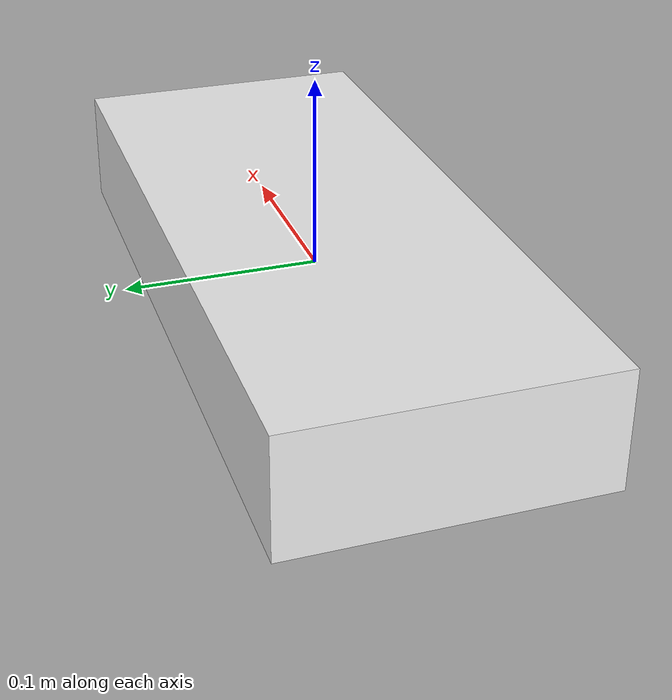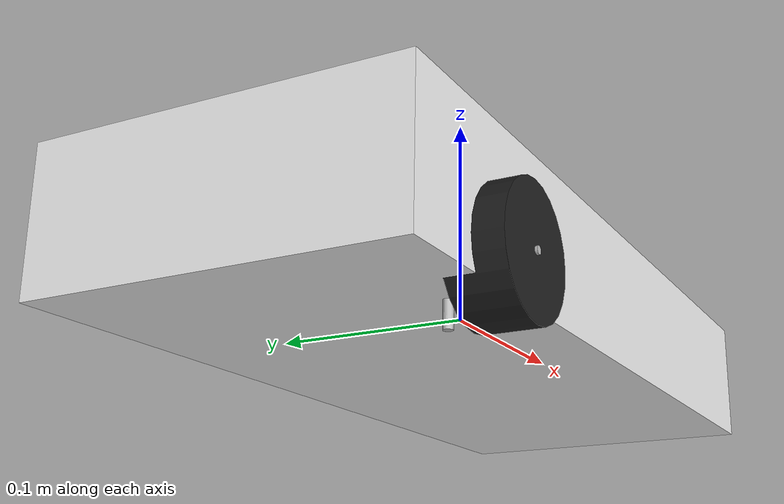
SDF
<sdf version='1.7'>
  <model name='car'>
    <link name='base_link'>
      <inertial>
        <pose>-7e-06 -4e-06 -1e-06 0 -0 0</pose>
        <mass>3.5656</mass>
        <inertia>
          <ixx>0.0087493</ixx>
          <ixy>-1.66866e-06</ixy>
          <ixz>-4.49975e-07</ixz>
          <iyy>0.044049</iyy>
          <iyz>-2.40287e-07</iyz>
          <izz>0.0505139</izz>
        </inertia>
      </inertial>
      <collision name='base_link_collision_collision'>
        <pose>0 0 0 0 -0 0</pose>
        <geometry>
          <box>
            <size>0.01 0.01 0.001</size>
          </box>
        </geometry>
      </collision>
      <collision name='base_link_fixed_joint_lump__chassis_collision_collision_1'>
        <pose>0 0 0 0 -0 0</pose>
        <geometry>
          <box>
            <size>0.38 0.16 0.062</size>
          </box>
        </geometry>
        <surface>
          <contact>
            <ode/>
          </contact>
          <friction>
            <ode/>
          </friction>
        </surface>
      </collision>
      <collision name='base_link_fixed_joint_lump__right_rear_shock_mount_column_collision_collision_2'>
        <pose>-0.125 -0.058 -0.018 0 0 -1.5708</pose>
        <geometry>
          <cylinder>
            <length>0.0483</length>
            <radius>0.002</radius>
          </cylinder>
        </geometry>
      </collision>
      <collision name='base_link_fixed_joint_lump__right_rear_axle_collision_collision_3'>
        <pose>-0.125 -0.0755 -0.018 1.5708 1.5708 0</pose>
        <geometry>
          <cylinder>
            <length>0.035</length>
            <radius>0.00166</radius>
          </cylinder>
        </geometry>
      </collision>
      <visual name='base_link_visual'>
        <pose>0 0 0 0 -0 0</pose>
        <geometry>
          <box>
            <size>0.01 0.01 0.001</size>
          </box>
        </geometry>
      </visual>
      <visual name='base_link_fixed_joint_lump__chassis_visual_1'>
        <pose>0 0 0 0 -0 0</pose>
        <geometry>
          <box>
            <size>0.38 0.16 0.062</size>
          </box>
        </geometry>
        <material>
          <script>
            <name>Gazebo/White</name>
            <uri>file://media/materials/scripts/gazebo.material</uri>
          </script>
        </material>
      </visual>
      <visual name='base_link_fixed_joint_lump__right_rear_shock_mount_column_visual_2'>
        <pose>-0.125 -0.058 -0.018 0 0 -1.5708</pose>
        <geometry>
          <cylinder>
            <length>0.0483</length>
            <radius>0.002</radius>
          </cylinder>
        </geometry>
      </visual>
      <visual name='base_link_fixed_joint_lump__right_rear_axle_visual_3'>
        <pose>-0.125 -0.0755 -0.018 1.5708 1.5708 0</pose>
        <geometry>
          <cylinder>
            <length>0.035</length>
            <radius>0.00166</radius>
          </cylinder>
        </geometry>
      </visual>
    </link>
    <joint name='right_rear_to_right_rear_axle_joint' type='revolute'>
      <pose relative_to='base_link'>-0.125 -0.08 -0.018 1.5708 1.5708 0</pose>
      <parent>base_link</parent>
      <child>right_rear</child>
      <axis>
        <xyz>0 0 1</xyz>
        <limit>
          <lower>-1.57</lower>
          <upper>1.57</upper>
          <effort>100</effort>
          <velocity>1</velocity>
        </limit>
        <dynamics>
          <damping>0.1</damping>
          <friction>0.1</friction>
          <spring_reference>0</spring_reference>
          <spring_stiffness>0</spring_stiffness>
        </dynamics>
      </axis>
    </joint>
    <link name='right_rear'>
      <pose relative_to='right_rear_to_right_rear_axle_joint'>0 0 0 0 -0 0</pose>
      <inertial>
        <pose>0 0 0 0 -0 0</pose>
        <mass>0.0282</mass>
        <inertia>
          <ixx>6.30446e-06</ixx>
          <ixy>0</ixy>
          <ixz>0</ixz>
          <iyy>6.30446e-06</iyy>
          <iyz>0</iyz>
          <izz>9.90172e-06</izz>
        </inertia>
      </inertial>
      <collision name='right_rear_fixed_joint_lump__wheel_collision_collision'>
        <pose>0 0 0 0 -0 0</pose>
        <geometry>
          <cylinder>
            <length>0.024</length>
            <radius>0.0265</radius>
          </cylinder>
        </geometry>
      </collision>
      <visual name='right_rear_visual'>
        <pose>0 0 0 0 -0 0</pose>
        <geometry>
          <cylinder>
            <length>0.024</length>
            <radius>0.0265</radius>
          </cylinder>
        </geometry>
        <material>
          <script>
            <name>Gazebo/Black</name>
            <uri>file://media/materials/scripts/gazebo.material</uri>
          </script>
        </material>
      </visual>
    </link>
    <plugin name='gazebo_ros_control' filename='libgazebo_ros_control.so'>
      <robotNamespace>/car</robotNamespace>
      <robotSimType>gazebo_ros_control/DefaultRobotHWSim</robotSimType>
      <legacyModeNS>1</legacyModeNS>
    </plugin>
    <frame name='right_rear_axle_to_right_rear_shock_mount_column_joint' attached_to='right_rear_shock_mount_column'>
      <pose>0.0175 0 0 3.14159 1.57079 3.14159</pose>
    </frame>
    <frame name='right_rear_axle' attached_to='right_rear_axle_to_right_rear_shock_mount_column_joint'/>
    <frame name='chassis_to_right_rear_shock_mount_column_joint' attached_to='chassis'>
      <pose>-0.125 -0.058 -0.018 0 0 -1.5708</pose>
    </frame>
    <frame name='right_rear_shock_mount_column' attached_to='chassis_to_right_rear_shock_mount_column_joint'/>
    <frame name='base_to_chassis_joint' attached_to='base_link'>
      <pose>0 0 0 0 -0 0</pose>
    </frame>
    <frame name='chassis' attached_to='base_to_chassis_joint'/>
  </model>
</sdf>
